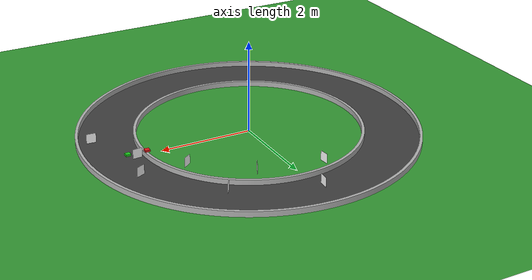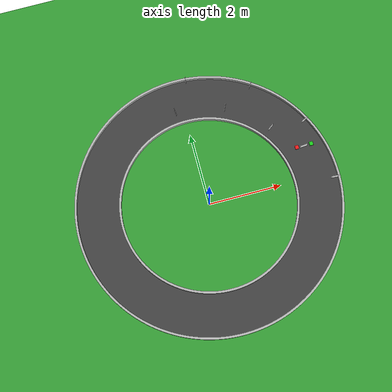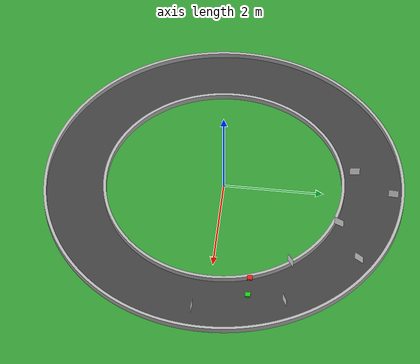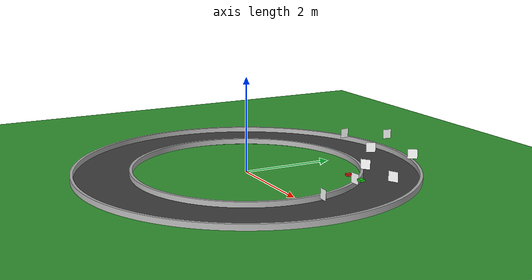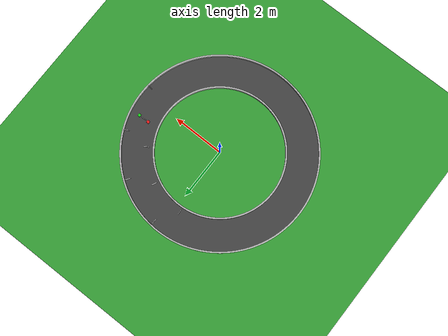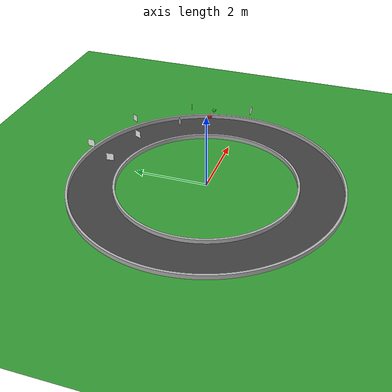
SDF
<sdf version="1.7">
 <world name="limo_circular_track">
  <gravity>0 0 -9.8</gravity>
  <plugin filename="ignition-gazebo-physics-system" name="gz::sim::systems::Physics"/>
  <plugin filename="ignition-gazebo-user-commands-system" name="gz::sim::systems::UserCommands"/>
  <plugin filename="ignition-gazebo-sensors-system" name="gz::sim::systems::Sensors">
   <render_engine>ogre2</render_engine>
  </plugin>
  <plugin filename="ignition-gazebo-scene-broadcaster-system" name="gz::sim::systems::SceneBroadcaster"/>
  <scene><ambient>0.7 0.7 0.7 1</ambient><background>0.75 0.9 1 1</background><shadows>true</shadows></scene>
  <light name="sun" type="directional">
   <pose>0 0 10 0 0 0</pose>
   <diffuse>1 1 1 1</diffuse>
   <specular>0.2 0.2 0.2 1</specular>
   <direction>-0.5 0.5 -1</direction>
  </light>
  <model name="ground">
   <static>true</static>
   <link name="ground_link">
    <collision name="ground_collision">
     <geometry><plane><normal>0 0 1</normal><size>100 100</size></plane></geometry>
    </collision>
    <visual name="ground_visual">
     <geometry><plane><normal>0 0 1</normal><size>100 100</size></plane></geometry>
     <material><ambient>0.2 0.55 0.2 1</ambient><diffuse>0.2 0.6 0.2 1</diffuse></material>
    </visual>
   </link>
  </model>
  <include><uri>model://asphalt_ring</uri><pose>0.000 0.000 0.010 0 0 0</pose></include>
  <model name="guard_rails">
   <static>true</static>
   <include><uri>model://guard_rail_outer</uri><pose>0.000 0.000 0.070 0 0 0</pose></include>
   <include><uri>model://guard_rail_inner</uri><pose>0.000 0.000 0.070 0 0 0</pose></include>
  </model>
  <model name="start_end_marker">
   <static>true</static>
   <link name="start">
    <pose>3.043 0.784 0.520 0 0 0</pose>
    <visual name="visual">
     <geometry><box><size>0.10 0.10 0.04</size></box></geometry>
     <material><ambient>0.1 0.8 0.1 1</ambient><diffuse>0.1 0.8 0.1 1</diffuse></material>
    </visual>
   </link>
   <link name="end">
    <pose>2.643 0.784 0.520 0 0 0</pose>
    <visual name="visual">
     <geometry><box><size>0.10 0.10 0.04</size></box></geometry>
     <material><ambient>0.9 0.1 0.1 1</ambient><diffuse>0.9 0.1 0.1 1</diffuse></material>
    </visual>
   </link>
  </model>
  <include>
   <uri>model://apriltag_00000</uri>
   <name>tag36h11_00</name>
   <pose>2.843 0.784 0.500 1.5708 0.0000 0.0959</pose>
  </include>
  <include>
   <uri>model://apriltag_00001</uri>
   <name>tag36h11_01</name>
   <pose>3.400 -0.250 0.500 1.5707 0.0000 -0.0733</pose>
  </include>
  <include>
   <uri>model://apriltag_00002</uri>
   <name>tag36h11_02</name>
   <pose>2.127 1.517 0.500 1.5709 0.0000 0.6194</pose>
  </include>
  <include>
   <uri>model://apriltag_00003</uri>
   <name>tag36h11_03</name>
   <pose>3.069 1.483 0.500 1.5709 0.0000 0.4504</pose>
  </include>
  <include>
   <uri>model://apriltag_00004</uri>
   <name>tag36h11_04</name>
   <pose>1.083 2.377 0.500 1.5707 0.0000 1.1431</pose>
  </include>
  <include>
   <uri>model://apriltag_00005</uri>
   <name>tag36h11_05</name>
   <pose>1.917 2.819 0.500 1.5708 0.0000 0.9740</pose>
  </include>
  <include>
   <uri>model://apriltag_00006</uri>
   <name>tag36h11_06</name>
   <pose>-0.250 2.600 0.500 1.5709 0.0000 1.6667</pose>
  </include>
  <include>
   <uri>model://apriltag_00007</uri>
   <name>tag36h11_07</name>
   <pose>0.250 3.400 0.500 1.5707 0.0000 1.4973</pose>
  </include>
 </world>
</sdf>

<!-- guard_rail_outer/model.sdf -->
<sdf version="1.7">
  <model name="guard_rail_outer">
    <static>true</static>
    <link name="guard_rail_link">
      <collision name="collision">
        <geometry>
          <mesh>
            <uri>model://guard_rail_outer/meshes/guard_rail_outer.obj</uri>
          </mesh>
        </geometry>
      </collision>
      <visual name="visual">
        <geometry>
          <mesh>
            <uri>model://guard_rail_outer/meshes/guard_rail_outer.obj</uri>
          </mesh>
        </geometry>
        <material>
          <ambient>0.7 0.7 0.7 1</ambient>
          <diffuse>0.7 0.7 0.7 1</diffuse>
        </material>
      </visual>
    </link>
  </model>
</sdf>

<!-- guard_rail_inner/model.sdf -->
<sdf version="1.7">
  <model name="guard_rail_inner">
    <static>true</static>
    <link name="guard_rail_link">
      <collision name="collision">
        <geometry>
          <mesh>
            <uri>model://guard_rail_inner/meshes/guard_rail_inner.obj</uri>
          </mesh>
        </geometry>
      </collision>
      <visual name="visual">
        <geometry>
          <mesh>
            <uri>model://guard_rail_inner/meshes/guard_rail_inner.obj</uri>
          </mesh>
        </geometry>
        <material>
          <ambient>0.7 0.7 0.7 1</ambient>
          <diffuse>0.7 0.7 0.7 1</diffuse>
        </material>
      </visual>
    </link>
  </model>
</sdf>

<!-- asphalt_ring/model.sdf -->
<sdf version="1.7">
  <model name="asphalt_ring">
    <static>true</static>
    <link name="asphalt_ring_link">
      <collision name="collision">
        <geometry>
          <mesh>
            <uri>model://asphalt_ring/meshes/asphalt_ring.obj</uri>
          </mesh>
        </geometry>
      </collision>
      <visual name="visual">
        <geometry>
          <mesh>
            <uri>model://asphalt_ring/meshes/asphalt_ring.obj</uri>
          </mesh>
        </geometry>
        <material>
          <ambient>0.2 0.2 0.2 1</ambient>
          <diffuse>0.25 0.25 0.25 1</diffuse>
        </material>
      </visual>
    </link>
  </model>
</sdf>

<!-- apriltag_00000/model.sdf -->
<sdf version="1.7">
  <model name="apriltag_00000">
    <static>true</static>
    <link name="tag_link">
      <pose>0 0 0 0 0 0</pose>
      <visual name="tag_visual">
        <geometry>
          <box>
            <size>0.20 0.20 0.002</size>
          </box>
        </geometry>
                          <material>
        <ambient>1 1 1 1</ambient>
        <diffuse>1 1 1 1</diffuse>
        <specular>0 0 0 1</specular>
        <emissive>1 1 1 1</emissive>
        <pbr>
          <metal>
            <albedo_map>model://apriltag_00000/materials/textures/tag36_11_00000.png</albedo_map>
            <emissive_map>model://apriltag_00000/materials/textures/tag36_11_00000.png</emissive_map>
            <metalness>0.0</metalness>
            <roughness>1.0</roughness>
          </metal>
        </pbr>
      </material>
      </visual>
      <collision name="tag_collision">
        <geometry>
          <box>
            <size>0.20 0.20 0.002</size>
          </box>
        </geometry>
      </collision>
    </link>
  </model>
</sdf>

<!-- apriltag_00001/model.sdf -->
<sdf version="1.7">
  <model name="apriltag_00001">
    <static>true</static>
    <link name="tag_link">
      <pose>0 0 0 0 0 0</pose>
      <visual name="tag_visual">
        <geometry>
          <box>
            <size>0.20 0.20 0.002</size>
          </box>
        </geometry>
                          <material>
        <ambient>1 1 1 1</ambient>
        <diffuse>1 1 1 1</diffuse>
        <specular>0 0 0 1</specular>
        <emissive>1 1 1 1</emissive>
        <pbr>
          <metal>
            <albedo_map>model://apriltag_00001/materials/textures/tag36_11_00001.png</albedo_map>
            <emissive_map>model://apriltag_00001/materials/textures/tag36_11_00001.png</emissive_map>
            <metalness>0.0</metalness>
            <roughness>1.0</roughness>
          </metal>
        </pbr>
      </material>
      </visual>
      <collision name="tag_collision">
        <geometry>
          <box>
            <size>0.20 0.20 0.002</size>
          </box>
        </geometry>
      </collision>
    </link>
  </model>
</sdf>

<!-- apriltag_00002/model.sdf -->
<sdf version="1.7">
  <model name="apriltag_00002">
    <static>true</static>
    <link name="tag_link">
      <pose>0 0 0 0 0 0</pose>
      <visual name="tag_visual">
        <geometry>
          <box>
            <size>0.20 0.20 0.002</size>
          </box>
        </geometry>
                          <material>
        <ambient>1 1 1 1</ambient>
        <diffuse>1 1 1 1</diffuse>
        <specular>0 0 0 1</specular>
        <emissive>1 1 1 1</emissive>
        <pbr>
          <metal>
            <albedo_map>model://apriltag_00002/materials/textures/tag36_11_00002.png</albedo_map>
            <emissive_map>model://apriltag_00002/materials/textures/tag36_11_00002.png</emissive_map>
            <metalness>0.0</metalness>
            <roughness>1.0</roughness>
          </metal>
        </pbr>
      </material>
      </visual>
      <collision name="tag_collision">
        <geometry>
          <box>
            <size>0.20 0.20 0.002</size>
          </box>
        </geometry>
      </collision>
    </link>
  </model>
</sdf>

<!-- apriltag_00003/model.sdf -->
<sdf version="1.7">
  <model name="apriltag_00003">
    <static>true</static>
    <link name="tag_link">
      <pose>0 0 0 0 0 0</pose>
      <visual name="tag_visual">
        <geometry>
          <box>
            <size>0.20 0.20 0.002</size>
          </box>
        </geometry>
                          <material>
        <ambient>1 1 1 1</ambient>
        <diffuse>1 1 1 1</diffuse>
        <specular>0 0 0 1</specular>
        <emissive>1 1 1 1</emissive>
        <pbr>
          <metal>
            <albedo_map>model://apriltag_00003/materials/textures/tag36_11_00003.png</albedo_map>
            <emissive_map>model://apriltag_00003/materials/textures/tag36_11_00003.png</emissive_map>
            <metalness>0.0</metalness>
            <roughness>1.0</roughness>
          </metal>
        </pbr>
      </material>
      </visual>
      <collision name="tag_collision">
        <geometry>
          <box>
            <size>0.20 0.20 0.002</size>
          </box>
        </geometry>
      </collision>
    </link>
  </model>
</sdf>

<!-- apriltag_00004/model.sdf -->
<sdf version="1.7">
  <model name="apriltag_00004">
    <static>true</static>
    <link name="tag_link">
      <pose>0 0 0 0 0 0</pose>
      <visual name="tag_visual">
        <geometry>
          <box>
            <size>0.20 0.20 0.002</size>
          </box>
        </geometry>
                          <material>
        <ambient>1 1 1 1</ambient>
        <diffuse>1 1 1 1</diffuse>
        <specular>0 0 0 1</specular>
        <emissive>1 1 1 1</emissive>
        <pbr>
          <metal>
            <albedo_map>model://apriltag_00004/materials/textures/tag36_11_00004.png</albedo_map>
            <emissive_map>model://apriltag_00004/materials/textures/tag36_11_00004.png</emissive_map>
            <metalness>0.0</metalness>
            <roughness>1.0</roughness>
          </metal>
        </pbr>
      </material>
      </visual>
      <collision name="tag_collision">
        <geometry>
          <box>
            <size>0.20 0.20 0.002</size>
          </box>
        </geometry>
      </collision>
    </link>
  </model>
</sdf>

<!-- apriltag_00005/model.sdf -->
<sdf version="1.7">
  <model name="apriltag_00005">
    <static>true</static>
    <link name="tag_link">
      <pose>0 0 0 0 0 0</pose>
      <visual name="tag_visual">
        <geometry>
          <box>
            <size>0.20 0.20 0.002</size>
          </box>
        </geometry>
                          <material>
        <ambient>1 1 1 1</ambient>
        <diffuse>1 1 1 1</diffuse>
        <specular>0 0 0 1</specular>
        <emissive>1 1 1 1</emissive>
        <pbr>
          <metal>
            <albedo_map>model://apriltag_00005/materials/textures/tag36_11_00005.png</albedo_map>
            <emissive_map>model://apriltag_00005/materials/textures/tag36_11_00005.png</emissive_map>
            <metalness>0.0</metalness>
            <roughness>1.0</roughness>
          </metal>
        </pbr>
      </material>
      </visual>
      <collision name="tag_collision">
        <geometry>
          <box>
            <size>0.20 0.20 0.002</size>
          </box>
        </geometry>
      </collision>
    </link>
  </model>
</sdf>

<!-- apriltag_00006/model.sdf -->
<sdf version="1.7">
  <model name="apriltag_00006">
    <static>true</static>
    <link name="tag_link">
      <pose>0 0 0 0 0 0</pose>
      <visual name="tag_visual">
        <geometry>
          <box>
            <size>0.20 0.20 0.002</size>
          </box>
        </geometry>
                          <material>
        <ambient>1 1 1 1</ambient>
        <diffuse>1 1 1 1</diffuse>
        <specular>0 0 0 1</specular>
        <emissive>1 1 1 1</emissive>
        <pbr>
          <metal>
            <albedo_map>model://apriltag_00006/materials/textures/tag36_11_00006.png</albedo_map>
            <emissive_map>model://apriltag_00006/materials/textures/tag36_11_00006.png</emissive_map>
            <metalness>0.0</metalness>
            <roughness>1.0</roughness>
          </metal>
        </pbr>
      </material>
      </visual>
      <collision name="tag_collision">
        <geometry>
          <box>
            <size>0.20 0.20 0.002</size>
          </box>
        </geometry>
      </collision>
    </link>
  </model>
</sdf>

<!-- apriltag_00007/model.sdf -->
<sdf version="1.7">
  <model name="apriltag_00007">
    <static>true</static>
    <link name="tag_link">
      <pose>0 0 0 0 0 0</pose>
      <visual name="tag_visual">
        <geometry>
          <box>
            <size>0.20 0.20 0.002</size>
          </box>
        </geometry>
                          <material>
        <ambient>1 1 1 1</ambient>
        <diffuse>1 1 1 1</diffuse>
        <specular>0 0 0 1</specular>
        <emissive>1 1 1 1</emissive>
        <pbr>
          <metal>
            <albedo_map>model://apriltag_00007/materials/textures/tag36_11_00007.png</albedo_map>
            <emissive_map>model://apriltag_00007/materials/textures/tag36_11_00007.png</emissive_map>
            <metalness>0.0</metalness>
            <roughness>1.0</roughness>
          </metal>
        </pbr>
      </material>
      </visual>
      <collision name="tag_collision">
        <geometry>
          <box>
            <size>0.20 0.20 0.002</size>
          </box>
        </geometry>
      </collision>
    </link>
  </model>
</sdf>
